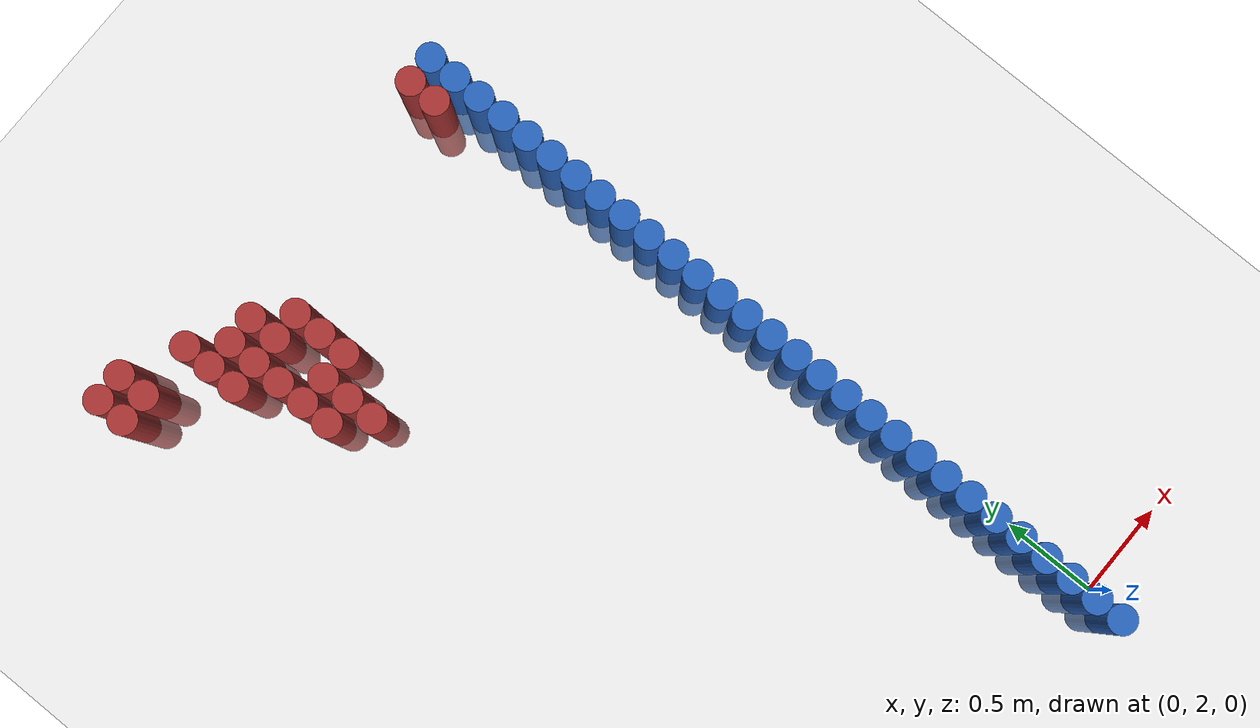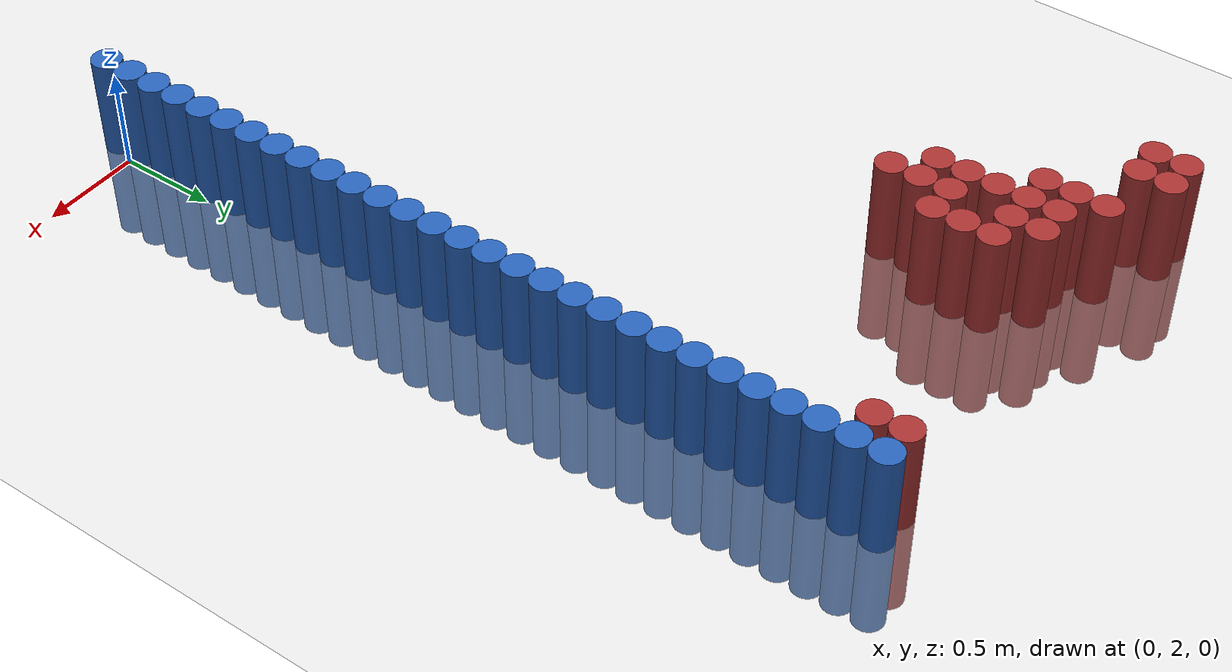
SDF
<sdf version="1.6">
 <world name="default">
  <model name="ground_plane">
   <static>1</static>
   <link name="link">
    <collision name="collision">
     <geometry><plane><normal>0 0 1</normal><size>100 100</size></plane></geometry>
     <surface><friction><ode><mu>100</mu><mu2>50</mu2></ode></friction></surface>
    </collision>
    <visual name="visual">
     <cast_shadows>0</cast_shadows>
     <geometry><plane><normal>0 0 1</normal><size>100 100</size></plane></geometry>
     <material>
      <script><uri>file://media/materials/scripts/gazebo.material</uri><name>Gazebo/Grey</name></script>
     </material>
    </visual>
   </link>
  </model>
  <model name="unit_cylinder_52">
   <static>1</static>
   <pose>-0.075000 1.875000 0.000000 0.000000 0.000000 0.000000</pose>
   <link name="link">
    <inertial>
     <mass>1</mass>
     <inertia><ixx>0.145833</ixx><ixy>0</ixy><ixz>0</ixz><iyy>0.145833</iyy><iyz>0</iyz><izz>0.125</izz></inertia>
    </inertial>
    <collision name="collision">
     <geometry><cylinder><radius>0.075000</radius><length>1</length></cylinder></geometry>
    </collision>
    <visual name="visual">
     <geometry><cylinder><radius>0.075000</radius><length>1</length></cylinder></geometry>
     <material>
      <ambient>0.152000 0.379000 0.720000 1</ambient>
      <diffuse>0.152000 0.379000 0.720000 1</diffuse>
     </material>
     <material>
      <script><name>Gazebo/Grey</name><uri>file://media/materials/scripts/gazebo.material</uri></script>
     </material>
    </visual>
   </link>
  </model>
  <model name="unit_cylinder_54">
   <static>1</static>
   <pose>-0.075000 2.025000 0.000000 0.000000 0.000000 0.000000</pose>
   <link name="link">
    <inertial>
     <mass>1</mass>
     <inertia><ixx>0.145833</ixx><ixy>0</ixy><ixz>0</ixz><iyy>0.145833</iyy><iyz>0</iyz><izz>0.125</izz></inertia>
    </inertial>
    <collision name="collision">
     <geometry><cylinder><radius>0.075000</radius><length>1</length></cylinder></geometry>
    </collision>
    <visual name="visual">
     <geometry><cylinder><radius>0.075000</radius><length>1</length></cylinder></geometry>
     <material>
      <ambient>0.152000 0.379000 0.720000 1</ambient>
      <diffuse>0.152000 0.379000 0.720000 1</diffuse>
     </material>
     <material>
      <script><name>Gazebo/Grey</name><uri>file://media/materials/scripts/gazebo.material</uri></script>
     </material>
    </visual>
   </link>
  </model>
  <model name="unit_cylinder_56">
   <static>1</static>
   <pose>-0.075000 2.175000 0.000000 0.000000 0.000000 0.000000</pose>
   <link name="link">
    <inertial>
     <mass>1</mass>
     <inertia><ixx>0.145833</ixx><ixy>0</ixy><ixz>0</ixz><iyy>0.145833</iyy><iyz>0</iyz><izz>0.125</izz></inertia>
    </inertial>
    <collision name="collision">
     <geometry><cylinder><radius>0.075000</radius><length>1</length></cylinder></geometry>
    </collision>
    <visual name="visual">
     <geometry><cylinder><radius>0.075000</radius><length>1</length></cylinder></geometry>
     <material>
      <ambient>0.152000 0.379000 0.720000 1</ambient>
      <diffuse>0.152000 0.379000 0.720000 1</diffuse>
     </material>
     <material>
      <script><name>Gazebo/Grey</name><uri>file://media/materials/scripts/gazebo.material</uri></script>
     </material>
    </visual>
   </link>
  </model>
  <model name="unit_cylinder_58">
   <static>1</static>
   <pose>-0.075000 2.325000 0.000000 0.000000 0.000000 0.000000</pose>
   <link name="link">
    <inertial>
     <mass>1</mass>
     <inertia><ixx>0.145833</ixx><ixy>0</ixy><ixz>0</ixz><iyy>0.145833</iyy><iyz>0</iyz><izz>0.125</izz></inertia>
    </inertial>
    <collision name="collision">
     <geometry><cylinder><radius>0.075000</radius><length>1</length></cylinder></geometry>
    </collision>
    <visual name="visual">
     <geometry><cylinder><radius>0.075000</radius><length>1</length></cylinder></geometry>
     <material>
      <ambient>0.152000 0.379000 0.720000 1</ambient>
      <diffuse>0.152000 0.379000 0.720000 1</diffuse>
     </material>
     <material>
      <script><name>Gazebo/Grey</name><uri>file://media/materials/scripts/gazebo.material</uri></script>
     </material>
    </visual>
   </link>
  </model>
  <model name="unit_cylinder_60">
   <static>1</static>
   <pose>-0.075000 2.475000 0.000000 0.000000 0.000000 0.000000</pose>
   <link name="link">
    <inertial>
     <mass>1</mass>
     <inertia><ixx>0.145833</ixx><ixy>0</ixy><ixz>0</ixz><iyy>0.145833</iyy><iyz>0</iyz><izz>0.125</izz></inertia>
    </inertial>
    <collision name="collision">
     <geometry><cylinder><radius>0.075000</radius><length>1</length></cylinder></geometry>
    </collision>
    <visual name="visual">
     <geometry><cylinder><radius>0.075000</radius><length>1</length></cylinder></geometry>
     <material>
      <ambient>0.152000 0.379000 0.720000 1</ambient>
      <diffuse>0.152000 0.379000 0.720000 1</diffuse>
     </material>
     <material>
      <script><name>Gazebo/Grey</name><uri>file://media/materials/scripts/gazebo.material</uri></script>
     </material>
    </visual>
   </link>
  </model>
  <model name="unit_cylinder_62">
   <static>1</static>
   <pose>-0.075000 2.625000 0.000000 0.000000 0.000000 0.000000</pose>
   <link name="link">
    <inertial>
     <mass>1</mass>
     <inertia><ixx>0.145833</ixx><ixy>0</ixy><ixz>0</ixz><iyy>0.145833</iyy><iyz>0</iyz><izz>0.125</izz></inertia>
    </inertial>
    <collision name="collision">
     <geometry><cylinder><radius>0.075000</radius><length>1</length></cylinder></geometry>
    </collision>
    <visual name="visual">
     <geometry><cylinder><radius>0.075000</radius><length>1</length></cylinder></geometry>
     <material>
      <ambient>0.152000 0.379000 0.720000 1</ambient>
      <diffuse>0.152000 0.379000 0.720000 1</diffuse>
     </material>
     <material>
      <script><name>Gazebo/Grey</name><uri>file://media/materials/scripts/gazebo.material</uri></script>
     </material>
    </visual>
   </link>
  </model>
  <model name="unit_cylinder_64">
   <static>1</static>
   <pose>-0.075000 2.775000 0.000000 0.000000 0.000000 0.000000</pose>
   <link name="link">
    <inertial>
     <mass>1</mass>
     <inertia><ixx>0.145833</ixx><ixy>0</ixy><ixz>0</ixz><iyy>0.145833</iyy><iyz>0</iyz><izz>0.125</izz></inertia>
    </inertial>
    <collision name="collision">
     <geometry><cylinder><radius>0.075000</radius><length>1</length></cylinder></geometry>
    </collision>
    <visual name="visual">
     <geometry><cylinder><radius>0.075000</radius><length>1</length></cylinder></geometry>
     <material>
      <ambient>0.152000 0.379000 0.720000 1</ambient>
      <diffuse>0.152000 0.379000 0.720000 1</diffuse>
     </material>
     <material>
      <script><name>Gazebo/Grey</name><uri>file://media/materials/scripts/gazebo.material</uri></script>
     </material>
    </visual>
   </link>
  </model>
  <model name="unit_cylinder_66">
   <static>1</static>
   <pose>-0.075000 2.925000 0.000000 0.000000 0.000000 0.000000</pose>
   <link name="link">
    <inertial>
     <mass>1</mass>
     <inertia><ixx>0.145833</ixx><ixy>0</ixy><ixz>0</ixz><iyy>0.145833</iyy><iyz>0</iyz><izz>0.125</izz></inertia>
    </inertial>
    <collision name="collision">
     <geometry><cylinder><radius>0.075000</radius><length>1</length></cylinder></geometry>
    </collision>
    <visual name="visual">
     <geometry><cylinder><radius>0.075000</radius><length>1</length></cylinder></geometry>
     <material>
      <ambient>0.152000 0.379000 0.720000 1</ambient>
      <diffuse>0.152000 0.379000 0.720000 1</diffuse>
     </material>
     <material>
      <script><name>Gazebo/Grey</name><uri>file://media/materials/scripts/gazebo.material</uri></script>
     </material>
    </visual>
   </link>
  </model>
  <model name="unit_cylinder_68">
   <static>1</static>
   <pose>-0.075000 3.075000 0.000000 0.000000 0.000000 0.000000</pose>
   <link name="link">
    <inertial>
     <mass>1</mass>
     <inertia><ixx>0.145833</ixx><ixy>0</ixy><ixz>0</ixz><iyy>0.145833</iyy><iyz>0</iyz><izz>0.125</izz></inertia>
    </inertial>
    <collision name="collision">
     <geometry><cylinder><radius>0.075000</radius><length>1</length></cylinder></geometry>
    </collision>
    <visual name="visual">
     <geometry><cylinder><radius>0.075000</radius><length>1</length></cylinder></geometry>
     <material>
      <ambient>0.152000 0.379000 0.720000 1</ambient>
      <diffuse>0.152000 0.379000 0.720000 1</diffuse>
     </material>
     <material>
      <script><name>Gazebo/Grey</name><uri>file://media/materials/scripts/gazebo.material</uri></script>
     </material>
    </visual>
   </link>
  </model>
  <model name="unit_cylinder_70">
   <static>1</static>
   <pose>-0.075000 3.225000 0.000000 0.000000 0.000000 0.000000</pose>
   <link name="link">
    <inertial>
     <mass>1</mass>
     <inertia><ixx>0.145833</ixx><ixy>0</ixy><ixz>0</ixz><iyy>0.145833</iyy><iyz>0</iyz><izz>0.125</izz></inertia>
    </inertial>
    <collision name="collision">
     <geometry><cylinder><radius>0.075000</radius><length>1</length></cylinder></geometry>
    </collision>
    <visual name="visual">
     <geometry><cylinder><radius>0.075000</radius><length>1</length></cylinder></geometry>
     <material>
      <ambient>0.152000 0.379000 0.720000 1</ambient>
      <diffuse>0.152000 0.379000 0.720000 1</diffuse>
     </material>
     <material>
      <script><name>Gazebo/Grey</name><uri>file://media/materials/scripts/gazebo.material</uri></script>
     </material>
    </visual>
   </link>
  </model>
  <model name="unit_cylinder_72">
   <static>1</static>
   <pose>-0.075000 3.375000 0.000000 0.000000 0.000000 0.000000</pose>
   <link name="link">
    <inertial>
     <mass>1</mass>
     <inertia><ixx>0.145833</ixx><ixy>0</ixy><ixz>0</ixz><iyy>0.145833</iyy><iyz>0</iyz><izz>0.125</izz></inertia>
    </inertial>
    <collision name="collision">
     <geometry><cylinder><radius>0.075000</radius><length>1</length></cylinder></geometry>
    </collision>
    <visual name="visual">
     <geometry><cylinder><radius>0.075000</radius><length>1</length></cylinder></geometry>
     <material>
      <ambient>0.152000 0.379000 0.720000 1</ambient>
      <diffuse>0.152000 0.379000 0.720000 1</diffuse>
     </material>
     <material>
      <script><name>Gazebo/Grey</name><uri>file://media/materials/scripts/gazebo.material</uri></script>
     </material>
    </visual>
   </link>
  </model>
  <model name="unit_cylinder_74">
   <static>1</static>
   <pose>-0.075000 3.525000 0.000000 0.000000 0.000000 0.000000</pose>
   <link name="link">
    <inertial>
     <mass>1</mass>
     <inertia><ixx>0.145833</ixx><ixy>0</ixy><ixz>0</ixz><iyy>0.145833</iyy><iyz>0</iyz><izz>0.125</izz></inertia>
    </inertial>
    <collision name="collision">
     <geometry><cylinder><radius>0.075000</radius><length>1</length></cylinder></geometry>
    </collision>
    <visual name="visual">
     <geometry><cylinder><radius>0.075000</radius><length>1</length></cylinder></geometry>
     <material>
      <ambient>0.152000 0.379000 0.720000 1</ambient>
      <diffuse>0.152000 0.379000 0.720000 1</diffuse>
     </material>
     <material>
      <script><name>Gazebo/Grey</name><uri>file://media/materials/scripts/gazebo.material</uri></script>
     </material>
    </visual>
   </link>
  </model>
  <model name="unit_cylinder_76">
   <static>1</static>
   <pose>-0.075000 3.675000 0.000000 0.000000 0.000000 0.000000</pose>
   <link name="link">
    <inertial>
     <mass>1</mass>
     <inertia><ixx>0.145833</ixx><ixy>0</ixy><ixz>0</ixz><iyy>0.145833</iyy><iyz>0</iyz><izz>0.125</izz></inertia>
    </inertial>
    <collision name="collision">
     <geometry><cylinder><radius>0.075000</radius><length>1</length></cylinder></geometry>
    </collision>
    <visual name="visual">
     <geometry><cylinder><radius>0.075000</radius><length>1</length></cylinder></geometry>
     <material>
      <ambient>0.152000 0.379000 0.720000 1</ambient>
      <diffuse>0.152000 0.379000 0.720000 1</diffuse>
     </material>
     <material>
      <script><name>Gazebo/Grey</name><uri>file://media/materials/scripts/gazebo.material</uri></script>
     </material>
    </visual>
   </link>
  </model>
  <model name="unit_cylinder_78">
   <static>1</static>
   <pose>-0.075000 3.825000 0.000000 0.000000 0.000000 0.000000</pose>
   <link name="link">
    <inertial>
     <mass>1</mass>
     <inertia><ixx>0.145833</ixx><ixy>0</ixy><ixz>0</ixz><iyy>0.145833</iyy><iyz>0</iyz><izz>0.125</izz></inertia>
    </inertial>
    <collision name="collision">
     <geometry><cylinder><radius>0.075000</radius><length>1</length></cylinder></geometry>
    </collision>
    <visual name="visual">
     <geometry><cylinder><radius>0.075000</radius><length>1</length></cylinder></geometry>
     <material>
      <ambient>0.152000 0.379000 0.720000 1</ambient>
      <diffuse>0.152000 0.379000 0.720000 1</diffuse>
     </material>
     <material>
      <script><name>Gazebo/Grey</name><uri>file://media/materials/scripts/gazebo.material</uri></script>
     </material>
    </visual>
   </link>
  </model>
  <model name="unit_cylinder_80">
   <static>1</static>
   <pose>-0.075000 3.975000 0.000000 0.000000 0.000000 0.000000</pose>
   <link name="link">
    <inertial>
     <mass>1</mass>
     <inertia><ixx>0.145833</ixx><ixy>0</ixy><ixz>0</ixz><iyy>0.145833</iyy><iyz>0</iyz><izz>0.125</izz></inertia>
    </inertial>
    <collision name="collision">
     <geometry><cylinder><radius>0.075000</radius><length>1</length></cylinder></geometry>
    </collision>
    <visual name="visual">
     <geometry><cylinder><radius>0.075000</radius><length>1</length></cylinder></geometry>
     <material>
      <ambient>0.152000 0.379000 0.720000 1</ambient>
      <diffuse>0.152000 0.379000 0.720000 1</diffuse>
     </material>
     <material>
      <script><name>Gazebo/Grey</name><uri>file://media/materials/scripts/gazebo.material</uri></script>
     </material>
    </visual>
   </link>
  </model>
  <model name="unit_cylinder_82">
   <static>1</static>
   <pose>-0.075000 4.125000 0.000000 0.000000 0.000000 0.000000</pose>
   <link name="link">
    <inertial>
     <mass>1</mass>
     <inertia><ixx>0.145833</ixx><ixy>0</ixy><ixz>0</ixz><iyy>0.145833</iyy><iyz>0</iyz><izz>0.125</izz></inertia>
    </inertial>
    <collision name="collision">
     <geometry><cylinder><radius>0.075000</radius><length>1</length></cylinder></geometry>
    </collision>
    <visual name="visual">
     <geometry><cylinder><radius>0.075000</radius><length>1</length></cylinder></geometry>
     <material>
      <ambient>0.152000 0.379000 0.720000 1</ambient>
      <diffuse>0.152000 0.379000 0.720000 1</diffuse>
     </material>
     <material>
      <script><name>Gazebo/Grey</name><uri>file://media/materials/scripts/gazebo.material</uri></script>
     </material>
    </visual>
   </link>
  </model>
  <model name="unit_cylinder_84">
   <static>1</static>
   <pose>-0.075000 4.275000 0.000000 0.000000 0.000000 0.000000</pose>
   <link name="link">
    <inertial>
     <mass>1</mass>
     <inertia><ixx>0.145833</ixx><ixy>0</ixy><ixz>0</ixz><iyy>0.145833</iyy><iyz>0</iyz><izz>0.125</izz></inertia>
    </inertial>
    <collision name="collision">
     <geometry><cylinder><radius>0.075000</radius><length>1</length></cylinder></geometry>
    </collision>
    <visual name="visual">
     <geometry><cylinder><radius>0.075000</radius><length>1</length></cylinder></geometry>
     <material>
      <ambient>0.152000 0.379000 0.720000 1</ambient>
      <diffuse>0.152000 0.379000 0.720000 1</diffuse>
     </material>
     <material>
      <script><name>Gazebo/Grey</name><uri>file://media/materials/scripts/gazebo.material</uri></script>
     </material>
    </visual>
   </link>
  </model>
  <model name="unit_cylinder_86">
   <static>1</static>
   <pose>-0.075000 4.425000 0.000000 0.000000 0.000000 0.000000</pose>
   <link name="link">
    <inertial>
     <mass>1</mass>
     <inertia><ixx>0.145833</ixx><ixy>0</ixy><ixz>0</ixz><iyy>0.145833</iyy><iyz>0</iyz><izz>0.125</izz></inertia>
    </inertial>
    <collision name="collision">
     <geometry><cylinder><radius>0.075000</radius><length>1</length></cylinder></geometry>
    </collision>
    <visual name="visual">
     <geometry><cylinder><radius>0.075000</radius><length>1</length></cylinder></geometry>
     <material>
      <ambient>0.152000 0.379000 0.720000 1</ambient>
      <diffuse>0.152000 0.379000 0.720000 1</diffuse>
     </material>
     <material>
      <script><name>Gazebo/Grey</name><uri>file://media/materials/scripts/gazebo.material</uri></script>
     </material>
    </visual>
   </link>
  </model>
  <model name="unit_cylinder_88">
   <static>1</static>
   <pose>-0.075000 4.575000 0.000000 0.000000 0.000000 0.000000</pose>
   <link name="link">
    <inertial>
     <mass>1</mass>
     <inertia><ixx>0.145833</ixx><ixy>0</ixy><ixz>0</ixz><iyy>0.145833</iyy><iyz>0</iyz><izz>0.125</izz></inertia>
    </inertial>
    <collision name="collision">
     <geometry><cylinder><radius>0.075000</radius><length>1</length></cylinder></geometry>
    </collision>
    <visual name="visual">
     <geometry><cylinder><radius>0.075000</radius><length>1</length></cylinder></geometry>
     <material>
      <ambient>0.152000 0.379000 0.720000 1</ambient>
      <diffuse>0.152000 0.379000 0.720000 1</diffuse>
     </material>
     <material>
      <script><name>Gazebo/Grey</name><uri>file://media/materials/scripts/gazebo.material</uri></script>
     </material>
    </visual>
   </link>
  </model>
  <model name="unit_cylinder_90">
   <static>1</static>
   <pose>-0.075000 4.725000 0.000000 0.000000 0.000000 0.000000</pose>
   <link name="link">
    <inertial>
     <mass>1</mass>
     <inertia><ixx>0.145833</ixx><ixy>0</ixy><ixz>0</ixz><iyy>0.145833</iyy><iyz>0</iyz><izz>0.125</izz></inertia>
    </inertial>
    <collision name="collision">
     <geometry><cylinder><radius>0.075000</radius><length>1</length></cylinder></geometry>
    </collision>
    <visual name="visual">
     <geometry><cylinder><radius>0.075000</radius><length>1</length></cylinder></geometry>
     <material>
      <ambient>0.152000 0.379000 0.720000 1</ambient>
      <diffuse>0.152000 0.379000 0.720000 1</diffuse>
     </material>
     <material>
      <script><name>Gazebo/Grey</name><uri>file://media/materials/scripts/gazebo.material</uri></script>
     </material>
    </visual>
   </link>
  </model>
  <model name="unit_cylinder_92">
   <static>1</static>
   <pose>-0.075000 4.875000 0.000000 0.000000 0.000000 0.000000</pose>
   <link name="link">
    <inertial>
     <mass>1</mass>
     <inertia><ixx>0.145833</ixx><ixy>0</ixy><ixz>0</ixz><iyy>0.145833</iyy><iyz>0</iyz><izz>0.125</izz></inertia>
    </inertial>
    <collision name="collision">
     <geometry><cylinder><radius>0.075000</radius><length>1</length></cylinder></geometry>
    </collision>
    <visual name="visual">
     <geometry><cylinder><radius>0.075000</radius><length>1</length></cylinder></geometry>
     <material>
      <ambient>0.152000 0.379000 0.720000 1</ambient>
      <diffuse>0.152000 0.379000 0.720000 1</diffuse>
     </material>
     <material>
      <script><name>Gazebo/Grey</name><uri>file://media/materials/scripts/gazebo.material</uri></script>
     </material>
    </visual>
   </link>
  </model>
  <model name="unit_cylinder_94">
   <static>1</static>
   <pose>-0.075000 5.025000 0.000000 0.000000 0.000000 0.000000</pose>
   <link name="link">
    <inertial>
     <mass>1</mass>
     <inertia><ixx>0.145833</ixx><ixy>0</ixy><ixz>0</ixz><iyy>0.145833</iyy><iyz>0</iyz><izz>0.125</izz></inertia>
    </inertial>
    <collision name="collision">
     <geometry><cylinder><radius>0.075000</radius><length>1</length></cylinder></geometry>
    </collision>
    <visual name="visual">
     <geometry><cylinder><radius>0.075000</radius><length>1</length></cylinder></geometry>
     <material>
      <ambient>0.152000 0.379000 0.720000 1</ambient>
      <diffuse>0.152000 0.379000 0.720000 1</diffuse>
     </material>
     <material>
      <script><name>Gazebo/Grey</name><uri>file://media/materials/scripts/gazebo.material</uri></script>
     </material>
    </visual>
   </link>
  </model>
  <model name="unit_cylinder_244">
   <static>1</static>
   <pose>-2.325000 6.075000 0.000000 0.000000 0.000000 0.000000</pose>
   <link name="link">
    <inertial>
     <mass>1</mass>
     <inertia><ixx>0.145833</ixx><ixy>0</ixy><ixz>0</ixz><iyy>0.145833</iyy><iyz>0</iyz><izz>0.125</izz></inertia>
    </inertial>
    <collision name="collision">
     <geometry><cylinder><radius>0.075000</radius><length>1</length></cylinder></geometry>
    </collision>
    <visual name="visual">
     <geometry><cylinder><radius>0.075000</radius><length>1</length></cylinder></geometry>
     <material>
      <ambient>0.648000 0.192000 0.192000 1</ambient>
      <diffuse>0.648000 0.192000 0.192000 1</diffuse>
     </material>
     <material>
      <script><name>Gazebo/Grey</name><uri>file://media/materials/scripts/gazebo.material</uri></script>
     </material>
    </visual>
   </link>
  </model>
  <model name="unit_cylinder_245">
   <static>1</static>
   <pose>-2.325000 6.225000 0.000000 0.000000 0.000000 0.000000</pose>
   <link name="link">
    <inertial>
     <mass>1</mass>
     <inertia><ixx>0.145833</ixx><ixy>0</ixy><ixz>0</ixz><iyy>0.145833</iyy><iyz>0</iyz><izz>0.125</izz></inertia>
    </inertial>
    <collision name="collision">
     <geometry><cylinder><radius>0.075000</radius><length>1</length></cylinder></geometry>
    </collision>
    <visual name="visual">
     <geometry><cylinder><radius>0.075000</radius><length>1</length></cylinder></geometry>
     <material>
      <ambient>0.648000 0.192000 0.192000 1</ambient>
      <diffuse>0.648000 0.192000 0.192000 1</diffuse>
     </material>
     <material>
      <script><name>Gazebo/Grey</name><uri>file://media/materials/scripts/gazebo.material</uri></script>
     </material>
    </visual>
   </link>
  </model>
  <model name="unit_cylinder_253">
   <static>1</static>
   <pose>-2.175000 6.075000 0.000000 0.000000 0.000000 0.000000</pose>
   <link name="link">
    <inertial>
     <mass>1</mass>
     <inertia><ixx>0.145833</ixx><ixy>0</ixy><ixz>0</ixz><iyy>0.145833</iyy><iyz>0</iyz><izz>0.125</izz></inertia>
    </inertial>
    <collision name="collision">
     <geometry><cylinder><radius>0.075000</radius><length>1</length></cylinder></geometry>
    </collision>
    <visual name="visual">
     <geometry><cylinder><radius>0.075000</radius><length>1</length></cylinder></geometry>
     <material>
      <ambient>0.648000 0.192000 0.192000 1</ambient>
      <diffuse>0.648000 0.192000 0.192000 1</diffuse>
     </material>
     <material>
      <script><name>Gazebo/Grey</name><uri>file://media/materials/scripts/gazebo.material</uri></script>
     </material>
    </visual>
   </link>
  </model>
  <model name="unit_cylinder_254">
   <static>1</static>
   <pose>-2.175000 6.225000 0.000000 0.000000 0.000000 0.000000</pose>
   <link name="link">
    <inertial>
     <mass>1</mass>
     <inertia><ixx>0.145833</ixx><ixy>0</ixy><ixz>0</ixz><iyy>0.145833</iyy><iyz>0</iyz><izz>0.125</izz></inertia>
    </inertial>
    <collision name="collision">
     <geometry><cylinder><radius>0.075000</radius><length>1</length></cylinder></geometry>
    </collision>
    <visual name="visual">
     <geometry><cylinder><radius>0.075000</radius><length>1</length></cylinder></geometry>
     <material>
      <ambient>0.648000 0.192000 0.192000 1</ambient>
      <diffuse>0.648000 0.192000 0.192000 1</diffuse>
     </material>
     <material>
      <script><name>Gazebo/Grey</name><uri>file://media/materials/scripts/gazebo.material</uri></script>
     </material>
    </visual>
   </link>
  </model>
  <model name="unit_cylinder_268">
   <static>1</static>
   <pose>-1.875000 5.775000 0.000000 0.000000 0.000000 0.000000</pose>
   <link name="link">
    <inertial>
     <mass>1</mass>
     <inertia><ixx>0.145833</ixx><ixy>0</ixy><ixz>0</ixz><iyy>0.145833</iyy><iyz>0</iyz><izz>0.125</izz></inertia>
    </inertial>
    <collision name="collision">
     <geometry><cylinder><radius>0.075000</radius><length>1</length></cylinder></geometry>
    </collision>
    <visual name="visual">
     <geometry><cylinder><radius>0.075000</radius><length>1</length></cylinder></geometry>
     <material>
      <ambient>0.648000 0.192000 0.192000 1</ambient>
      <diffuse>0.648000 0.192000 0.192000 1</diffuse>
     </material>
     <material>
      <script><name>Gazebo/Grey</name><uri>file://media/materials/scripts/gazebo.material</uri></script>
     </material>
    </visual>
   </link>
  </model>
  <model name="unit_cylinder_269">
   <static>1</static>
   <pose>-1.875000 5.925000 0.000000 0.000000 0.000000 0.000000</pose>
   <link name="link">
    <inertial>
     <mass>1</mass>
     <inertia><ixx>0.145833</ixx><ixy>0</ixy><ixz>0</ixz><iyy>0.145833</iyy><iyz>0</iyz><izz>0.125</izz></inertia>
    </inertial>
    <collision name="collision">
     <geometry><cylinder><radius>0.075000</radius><length>1</length></cylinder></geometry>
    </collision>
    <visual name="visual">
     <geometry><cylinder><radius>0.075000</radius><length>1</length></cylinder></geometry>
     <material>
      <ambient>0.648000 0.192000 0.192000 1</ambient>
      <diffuse>0.648000 0.192000 0.192000 1</diffuse>
     </material>
     <material>
      <script><name>Gazebo/Grey</name><uri>file://media/materials/scripts/gazebo.material</uri></script>
     </material>
    </visual>
   </link>
  </model>
  <model name="unit_cylinder_270">
   <static>1</static>
   <pose>-1.875000 6.075000 0.000000 0.000000 0.000000 0.000000</pose>
   <link name="link">
    <inertial>
     <mass>1</mass>
     <inertia><ixx>0.145833</ixx><ixy>0</ixy><ixz>0</ixz><iyy>0.145833</iyy><iyz>0</iyz><izz>0.125</izz></inertia>
    </inertial>
    <collision name="collision">
     <geometry><cylinder><radius>0.075000</radius><length>1</length></cylinder></geometry>
    </collision>
    <visual name="visual">
     <geometry><cylinder><radius>0.075000</radius><length>1</length></cylinder></geometry>
     <material>
      <ambient>0.648000 0.192000 0.192000 1</ambient>
      <diffuse>0.648000 0.192000 0.192000 1</diffuse>
     </material>
     <material>
      <script><name>Gazebo/Grey</name><uri>file://media/materials/scripts/gazebo.material</uri></script>
     </material>
    </visual>
   </link>
  </model>
  <model name="unit_cylinder_276">
   <static>1</static>
   <pose>-1.725000 5.325000 0.000000 0.000000 0.000000 0.000000</pose>
   <link name="link">
    <inertial>
     <mass>1</mass>
     <inertia><ixx>0.145833</ixx><ixy>0</ixy><ixz>0</ixz><iyy>0.145833</iyy><iyz>0</iyz><izz>0.125</izz></inertia>
    </inertial>
    <collision name="collision">
     <geometry><cylinder><radius>0.075000</radius><length>1</length></cylinder></geometry>
    </collision>
    <visual name="visual">
     <geometry><cylinder><radius>0.075000</radius><length>1</length></cylinder></geometry>
     <material>
      <ambient>0.648000 0.192000 0.192000 1</ambient>
      <diffuse>0.648000 0.192000 0.192000 1</diffuse>
     </material>
     <material>
      <script><name>Gazebo/Grey</name><uri>file://media/materials/scripts/gazebo.material</uri></script>
     </material>
    </visual>
   </link>
  </model>
  <model name="unit_cylinder_277">
   <static>1</static>
   <pose>-1.725000 5.475000 0.000000 0.000000 0.000000 0.000000</pose>
   <link name="link">
    <inertial>
     <mass>1</mass>
     <inertia><ixx>0.145833</ixx><ixy>0</ixy><ixz>0</ixz><iyy>0.145833</iyy><iyz>0</iyz><izz>0.125</izz></inertia>
    </inertial>
    <collision name="collision">
     <geometry><cylinder><radius>0.075000</radius><length>1</length></cylinder></geometry>
    </collision>
    <visual name="visual">
     <geometry><cylinder><radius>0.075000</radius><length>1</length></cylinder></geometry>
     <material>
      <ambient>0.648000 0.192000 0.192000 1</ambient>
      <diffuse>0.648000 0.192000 0.192000 1</diffuse>
     </material>
     <material>
      <script><name>Gazebo/Grey</name><uri>file://media/materials/scripts/gazebo.material</uri></script>
     </material>
    </visual>
   </link>
  </model>
  <model name="unit_cylinder_278">
   <static>1</static>
   <pose>-1.725000 5.625000 0.000000 0.000000 0.000000 0.000000</pose>
   <link name="link">
    <inertial>
     <mass>1</mass>
     <inertia><ixx>0.145833</ixx><ixy>0</ixy><ixz>0</ixz><iyy>0.145833</iyy><iyz>0</iyz><izz>0.125</izz></inertia>
    </inertial>
    <collision name="collision">
     <geometry><cylinder><radius>0.075000</radius><length>1</length></cylinder></geometry>
    </collision>
    <visual name="visual">
     <geometry><cylinder><radius>0.075000</radius><length>1</length></cylinder></geometry>
     <material>
      <ambient>0.648000 0.192000 0.192000 1</ambient>
      <diffuse>0.648000 0.192000 0.192000 1</diffuse>
     </material>
     <material>
      <script><name>Gazebo/Grey</name><uri>file://media/materials/scripts/gazebo.material</uri></script>
     </material>
    </visual>
   </link>
  </model>
  <model name="unit_cylinder_279">
   <static>1</static>
   <pose>-1.725000 5.775000 0.000000 0.000000 0.000000 0.000000</pose>
   <link name="link">
    <inertial>
     <mass>1</mass>
     <inertia><ixx>0.145833</ixx><ixy>0</ixy><ixz>0</ixz><iyy>0.145833</iyy><iyz>0</iyz><izz>0.125</izz></inertia>
    </inertial>
    <collision name="collision">
     <geometry><cylinder><radius>0.075000</radius><length>1</length></cylinder></geometry>
    </collision>
    <visual name="visual">
     <geometry><cylinder><radius>0.075000</radius><length>1</length></cylinder></geometry>
     <material>
      <ambient>0.648000 0.192000 0.192000 1</ambient>
      <diffuse>0.648000 0.192000 0.192000 1</diffuse>
     </material>
     <material>
      <script><name>Gazebo/Grey</name><uri>file://media/materials/scripts/gazebo.material</uri></script>
     </material>
    </visual>
   </link>
  </model>
  <model name="unit_cylinder_280">
   <static>1</static>
   <pose>-1.725000 5.925000 0.000000 0.000000 0.000000 0.000000</pose>
   <link name="link">
    <inertial>
     <mass>1</mass>
     <inertia><ixx>0.145833</ixx><ixy>0</ixy><ixz>0</ixz><iyy>0.145833</iyy><iyz>0</iyz><izz>0.125</izz></inertia>
    </inertial>
    <collision name="collision">
     <geometry><cylinder><radius>0.075000</radius><length>1</length></cylinder></geometry>
    </collision>
    <visual name="visual">
     <geometry><cylinder><radius>0.075000</radius><length>1</length></cylinder></geometry>
     <material>
      <ambient>0.648000 0.192000 0.192000 1</ambient>
      <diffuse>0.648000 0.192000 0.192000 1</diffuse>
     </material>
     <material>
      <script><name>Gazebo/Grey</name><uri>file://media/materials/scripts/gazebo.material</uri></script>
     </material>
    </visual>
   </link>
  </model>
  <model name="unit_cylinder_289">
   <static>1</static>
   <pose>-1.575000 5.175000 0.000000 0.000000 0.000000 0.000000</pose>
   <link name="link">
    <inertial>
     <mass>1</mass>
     <inertia><ixx>0.145833</ixx><ixy>0</ixy><ixz>0</ixz><iyy>0.145833</iyy><iyz>0</iyz><izz>0.125</izz></inertia>
    </inertial>
    <collision name="collision">
     <geometry><cylinder><radius>0.075000</radius><length>1</length></cylinder></geometry>
    </collision>
    <visual name="visual">
     <geometry><cylinder><radius>0.075000</radius><length>1</length></cylinder></geometry>
     <material>
      <ambient>0.648000 0.192000 0.192000 1</ambient>
      <diffuse>0.648000 0.192000 0.192000 1</diffuse>
     </material>
     <material>
      <script><name>Gazebo/Grey</name><uri>file://media/materials/scripts/gazebo.material</uri></script>
     </material>
    </visual>
   </link>
  </model>
  <model name="unit_cylinder_290">
   <static>1</static>
   <pose>-1.575000 5.325000 0.000000 0.000000 0.000000 0.000000</pose>
   <link name="link">
    <inertial>
     <mass>1</mass>
     <inertia><ixx>0.145833</ixx><ixy>0</ixy><ixz>0</ixz><iyy>0.145833</iyy><iyz>0</iyz><izz>0.125</izz></inertia>
    </inertial>
    <collision name="collision">
     <geometry><cylinder><radius>0.075000</radius><length>1</length></cylinder></geometry>
    </collision>
    <visual name="visual">
     <geometry><cylinder><radius>0.075000</radius><length>1</length></cylinder></geometry>
     <material>
      <ambient>0.648000 0.192000 0.192000 1</ambient>
      <diffuse>0.648000 0.192000 0.192000 1</diffuse>
     </material>
     <material>
      <script><name>Gazebo/Grey</name><uri>file://media/materials/scripts/gazebo.material</uri></script>
     </material>
    </visual>
   </link>
  </model>
  <model name="unit_cylinder_291">
   <static>1</static>
   <pose>-1.575000 5.475000 0.000000 0.000000 0.000000 0.000000</pose>
   <link name="link">
    <inertial>
     <mass>1</mass>
     <inertia><ixx>0.145833</ixx><ixy>0</ixy><ixz>0</ixz><iyy>0.145833</iyy><iyz>0</iyz><izz>0.125</izz></inertia>
    </inertial>
    <collision name="collision">
     <geometry><cylinder><radius>0.075000</radius><length>1</length></cylinder></geometry>
    </collision>
    <visual name="visual">
     <geometry><cylinder><radius>0.075000</radius><length>1</length></cylinder></geometry>
     <material>
      <ambient>0.648000 0.192000 0.192000 1</ambient>
      <diffuse>0.648000 0.192000 0.192000 1</diffuse>
     </material>
     <material>
      <script><name>Gazebo/Grey</name><uri>file://media/materials/scripts/gazebo.material</uri></script>
     </material>
    </visual>
   </link>
  </model>
  <model name="unit_cylinder_292">
   <static>1</static>
   <pose>-1.575000 5.775000 0.000000 0.000000 0.000000 0.000000</pose>
   <link name="link">
    <inertial>
     <mass>1</mass>
     <inertia><ixx>0.145833</ixx><ixy>0</ixy><ixz>0</ixz><iyy>0.145833</iyy><iyz>0</iyz><izz>0.125</izz></inertia>
    </inertial>
    <collision name="collision">
     <geometry><cylinder><radius>0.075000</radius><length>1</length></cylinder></geometry>
    </collision>
    <visual name="visual">
     <geometry><cylinder><radius>0.075000</radius><length>1</length></cylinder></geometry>
     <material>
      <ambient>0.648000 0.192000 0.192000 1</ambient>
      <diffuse>0.648000 0.192000 0.192000 1</diffuse>
     </material>
     <material>
      <script><name>Gazebo/Grey</name><uri>file://media/materials/scripts/gazebo.material</uri></script>
     </material>
    </visual>
   </link>
  </model>
  <model name="unit_cylinder_293">
   <static>1</static>
   <pose>-1.575000 5.925000 0.000000 0.000000 0.000000 0.000000</pose>
   <link name="link">
    <inertial>
     <mass>1</mass>
     <inertia><ixx>0.145833</ixx><ixy>0</ixy><ixz>0</ixz><iyy>0.145833</iyy><iyz>0</iyz><izz>0.125</izz></inertia>
    </inertial>
    <collision name="collision">
     <geometry><cylinder><radius>0.075000</radius><length>1</length></cylinder></geometry>
    </collision>
    <visual name="visual">
     <geometry><cylinder><radius>0.075000</radius><length>1</length></cylinder></geometry>
     <material>
      <ambient>0.648000 0.192000 0.192000 1</ambient>
      <diffuse>0.648000 0.192000 0.192000 1</diffuse>
     </material>
     <material>
      <script><name>Gazebo/Grey</name><uri>file://media/materials/scripts/gazebo.material</uri></script>
     </material>
    </visual>
   </link>
  </model>
  <model name="unit_cylinder_302">
   <static>1</static>
   <pose>-1.425000 5.475000 0.000000 0.000000 0.000000 0.000000</pose>
   <link name="link">
    <inertial>
     <mass>1</mass>
     <inertia><ixx>0.145833</ixx><ixy>0</ixy><ixz>0</ixz><iyy>0.145833</iyy><iyz>0</iyz><izz>0.125</izz></inertia>
    </inertial>
    <collision name="collision">
     <geometry><cylinder><radius>0.075000</radius><length>1</length></cylinder></geometry>
    </collision>
    <visual name="visual">
     <geometry><cylinder><radius>0.075000</radius><length>1</length></cylinder></geometry>
     <material>
      <ambient>0.648000 0.192000 0.192000 1</ambient>
      <diffuse>0.648000 0.192000 0.192000 1</diffuse>
     </material>
     <material>
      <script><name>Gazebo/Grey</name><uri>file://media/materials/scripts/gazebo.material</uri></script>
     </material>
    </visual>
   </link>
  </model>
  <model name="unit_cylinder_303">
   <static>1</static>
   <pose>-1.425000 5.625000 0.000000 0.000000 0.000000 0.000000</pose>
   <link name="link">
    <inertial>
     <mass>1</mass>
     <inertia><ixx>0.145833</ixx><ixy>0</ixy><ixz>0</ixz><iyy>0.145833</iyy><iyz>0</iyz><izz>0.125</izz></inertia>
    </inertial>
    <collision name="collision">
     <geometry><cylinder><radius>0.075000</radius><length>1</length></cylinder></geometry>
    </collision>
    <visual name="visual">
     <geometry><cylinder><radius>0.075000</radius><length>1</length></cylinder></geometry>
     <material>
      <ambient>0.648000 0.192000 0.192000 1</ambient>
      <diffuse>0.648000 0.192000 0.192000 1</diffuse>
     </material>
     <material>
      <script><name>Gazebo/Grey</name><uri>file://media/materials/scripts/gazebo.material</uri></script>
     </material>
    </visual>
   </link>
  </model>
  <model name="unit_cylinder_304">
   <static>1</static>
   <pose>-1.425000 5.775000 0.000000 0.000000 0.000000 0.000000</pose>
   <link name="link">
    <inertial>
     <mass>1</mass>
     <inertia><ixx>0.145833</ixx><ixy>0</ixy><ixz>0</ixz><iyy>0.145833</iyy><iyz>0</iyz><izz>0.125</izz></inertia>
    </inertial>
    <collision name="collision">
     <geometry><cylinder><radius>0.075000</radius><length>1</length></cylinder></geometry>
    </collision>
    <visual name="visual">
     <geometry><cylinder><radius>0.075000</radius><length>1</length></cylinder></geometry>
     <material>
      <ambient>0.648000 0.192000 0.192000 1</ambient>
      <diffuse>0.648000 0.192000 0.192000 1</diffuse>
     </material>
     <material>
      <script><name>Gazebo/Grey</name><uri>file://media/materials/scripts/gazebo.material</uri></script>
     </material>
    </visual>
   </link>
  </model>
  <model name="unit_cylinder_326">
   <static>1</static>
   <pose>-0.225000 5.925000 0.000000 0.000000 0.000000 0.000000</pose>
   <link name="link">
    <inertial>
     <mass>1</mass>
     <inertia><ixx>0.145833</ixx><ixy>0</ixy><ixz>0</ixz><iyy>0.145833</iyy><iyz>0</iyz><izz>0.125</izz></inertia>
    </inertial>
    <collision name="collision">
     <geometry><cylinder><radius>0.075000</radius><length>1</length></cylinder></geometry>
    </collision>
    <visual name="visual">
     <geometry><cylinder><radius>0.075000</radius><length>1</length></cylinder></geometry>
     <material>
      <ambient>0.648000 0.192000 0.192000 1</ambient>
      <diffuse>0.648000 0.192000 0.192000 1</diffuse>
     </material>
     <material>
      <script><name>Gazebo/Grey</name><uri>file://media/materials/scripts/gazebo.material</uri></script>
     </material>
    </visual>
   </link>
  </model>
  <model name="unit_cylinder_327">
   <static>1</static>
   <pose>-0.225000 6.075000 0.000000 0.000000 0.000000 0.000000</pose>
   <link name="link">
    <inertial>
     <mass>1</mass>
     <inertia><ixx>0.145833</ixx><ixy>0</ixy><ixz>0</ixz><iyy>0.145833</iyy><iyz>0</iyz><izz>0.125</izz></inertia>
    </inertial>
    <collision name="collision">
     <geometry><cylinder><radius>0.075000</radius><length>1</length></cylinder></geometry>
    </collision>
    <visual name="visual">
     <geometry><cylinder><radius>0.075000</radius><length>1</length></cylinder></geometry>
     <material>
      <ambient>0.648000 0.192000 0.192000 1</ambient>
      <diffuse>0.648000 0.192000 0.192000 1</diffuse>
     </material>
     <material>
      <script><name>Gazebo/Grey</name><uri>file://media/materials/scripts/gazebo.material</uri></script>
     </material>
    </visual>
   </link>
  </model>
  <model name="unit_cylinder_332">
   <static>1</static>
   <pose>-0.075000 5.175000 0.000000 0.000000 0.000000 0.000000</pose>
   <link name="link">
    <inertial>
     <mass>1</mass>
     <inertia><ixx>0.145833</ixx><ixy>0</ixy><ixz>0</ixz><iyy>0.145833</iyy><iyz>0</iyz><izz>0.125</izz></inertia>
    </inertial>
    <collision name="collision">
     <geometry><cylinder><radius>0.075000</radius><length>1</length></cylinder></geometry>
    </collision>
    <visual name="visual">
     <geometry><cylinder><radius>0.075000</radius><length>1</length></cylinder></geometry>
     <material>
      <ambient>0.152000 0.379000 0.720000 1</ambient>
      <diffuse>0.152000 0.379000 0.720000 1</diffuse>
     </material>
     <material>
      <script><name>Gazebo/Grey</name><uri>file://media/materials/scripts/gazebo.material</uri></script>
     </material>
    </visual>
   </link>
  </model>
  <model name="unit_cylinder_333">
   <static>1</static>
   <pose>-0.075000 5.325000 0.000000 0.000000 0.000000 0.000000</pose>
   <link name="link">
    <inertial>
     <mass>1</mass>
     <inertia><ixx>0.145833</ixx><ixy>0</ixy><ixz>0</ixz><iyy>0.145833</iyy><iyz>0</iyz><izz>0.125</izz></inertia>
    </inertial>
    <collision name="collision">
     <geometry><cylinder><radius>0.075000</radius><length>1</length></cylinder></geometry>
    </collision>
    <visual name="visual">
     <geometry><cylinder><radius>0.075000</radius><length>1</length></cylinder></geometry>
     <material>
      <ambient>0.152000 0.379000 0.720000 1</ambient>
      <diffuse>0.152000 0.379000 0.720000 1</diffuse>
     </material>
     <material>
      <script><name>Gazebo/Grey</name><uri>file://media/materials/scripts/gazebo.material</uri></script>
     </material>
    </visual>
   </link>
  </model>
  <model name="unit_cylinder_334">
   <static>1</static>
   <pose>-0.075000 5.475000 0.000000 0.000000 0.000000 0.000000</pose>
   <link name="link">
    <inertial>
     <mass>1</mass>
     <inertia><ixx>0.145833</ixx><ixy>0</ixy><ixz>0</ixz><iyy>0.145833</iyy><iyz>0</iyz><izz>0.125</izz></inertia>
    </inertial>
    <collision name="collision">
     <geometry><cylinder><radius>0.075000</radius><length>1</length></cylinder></geometry>
    </collision>
    <visual name="visual">
     <geometry><cylinder><radius>0.075000</radius><length>1</length></cylinder></geometry>
     <material>
      <ambient>0.152000 0.379000 0.720000 1</ambient>
      <diffuse>0.152000 0.379000 0.720000 1</diffuse>
     </material>
     <material>
      <script><name>Gazebo/Grey</name><uri>file://media/materials/scripts/gazebo.material</uri></script>
     </material>
    </visual>
   </link>
  </model>
  <model name="unit_cylinder_335">
   <static>1</static>
   <pose>-0.075000 5.625000 0.000000 0.000000 0.000000 0.000000</pose>
   <link name="link">
    <inertial>
     <mass>1</mass>
     <inertia><ixx>0.145833</ixx><ixy>0</ixy><ixz>0</ixz><iyy>0.145833</iyy><iyz>0</iyz><izz>0.125</izz></inertia>
    </inertial>
    <collision name="collision">
     <geometry><cylinder><radius>0.075000</radius><length>1</length></cylinder></geometry>
    </collision>
    <visual name="visual">
     <geometry><cylinder><radius>0.075000</radius><length>1</length></cylinder></geometry>
     <material>
      <ambient>0.152000 0.379000 0.720000 1</ambient>
      <diffuse>0.152000 0.379000 0.720000 1</diffuse>
     </material>
     <material>
      <script><name>Gazebo/Grey</name><uri>file://media/materials/scripts/gazebo.material</uri></script>
     </material>
    </visual>
   </link>
  </model>
  <model name="unit_cylinder_336">
   <static>1</static>
   <pose>-0.075000 5.775000 0.000000 0.000000 0.000000 0.000000</pose>
   <link name="link">
    <inertial>
     <mass>1</mass>
     <inertia><ixx>0.145833</ixx><ixy>0</ixy><ixz>0</ixz><iyy>0.145833</iyy><iyz>0</iyz><izz>0.125</izz></inertia>
    </inertial>
    <collision name="collision">
     <geometry><cylinder><radius>0.075000</radius><length>1</length></cylinder></geometry>
    </collision>
    <visual name="visual">
     <geometry><cylinder><radius>0.075000</radius><length>1</length></cylinder></geometry>
     <material>
      <ambient>0.152000 0.379000 0.720000 1</ambient>
      <diffuse>0.152000 0.379000 0.720000 1</diffuse>
     </material>
     <material>
      <script><name>Gazebo/Grey</name><uri>file://media/materials/scripts/gazebo.material</uri></script>
     </material>
    </visual>
   </link>
  </model>
  <model name="unit_cylinder_337">
   <static>1</static>
   <pose>-0.075000 5.925000 0.000000 0.000000 0.000000 0.000000</pose>
   <link name="link">
    <inertial>
     <mass>1</mass>
     <inertia><ixx>0.145833</ixx><ixy>0</ixy><ixz>0</ixz><iyy>0.145833</iyy><iyz>0</iyz><izz>0.125</izz></inertia>
    </inertial>
    <collision name="collision">
     <geometry><cylinder><radius>0.075000</radius><length>1</length></cylinder></geometry>
    </collision>
    <visual name="visual">
     <geometry><cylinder><radius>0.075000</radius><length>1</length></cylinder></geometry>
     <material>
      <ambient>0.152000 0.379000 0.720000 1</ambient>
      <diffuse>0.152000 0.379000 0.720000 1</diffuse>
     </material>
     <material>
      <script><name>Gazebo/Grey</name><uri>file://media/materials/scripts/gazebo.material</uri></script>
     </material>
    </visual>
   </link>
  </model>
  <model name="unit_cylinder_338">
   <static>1</static>
   <pose>-0.075000 6.075000 0.000000 0.000000 0.000000 0.000000</pose>
   <link name="link">
    <inertial>
     <mass>1</mass>
     <inertia><ixx>0.145833</ixx><ixy>0</ixy><ixz>0</ixz><iyy>0.145833</iyy><iyz>0</iyz><izz>0.125</izz></inertia>
    </inertial>
    <collision name="collision">
     <geometry><cylinder><radius>0.075000</radius><length>1</length></cylinder></geometry>
    </collision>
    <visual name="visual">
     <geometry><cylinder><radius>0.075000</radius><length>1</length></cylinder></geometry>
     <material>
      <ambient>0.152000 0.379000 0.720000 1</ambient>
      <diffuse>0.152000 0.379000 0.720000 1</diffuse>
     </material>
     <material>
      <script><name>Gazebo/Grey</name><uri>file://media/materials/scripts/gazebo.material</uri></script>
     </material>
    </visual>
   </link>
  </model>
 </world>
</sdf>
